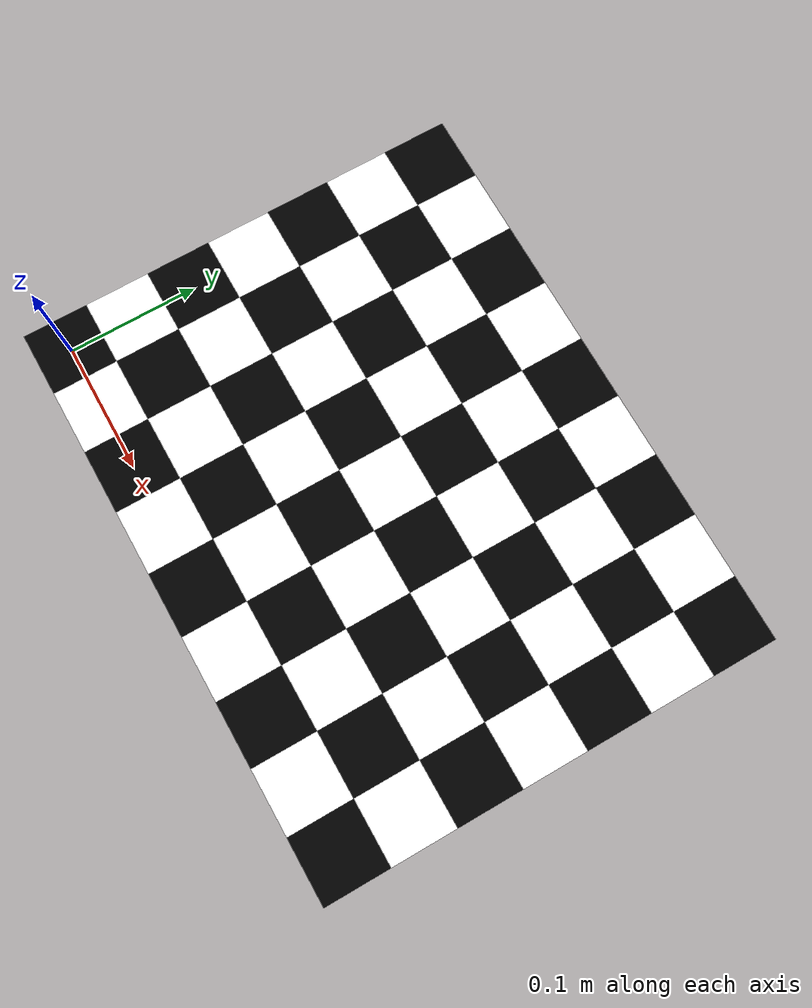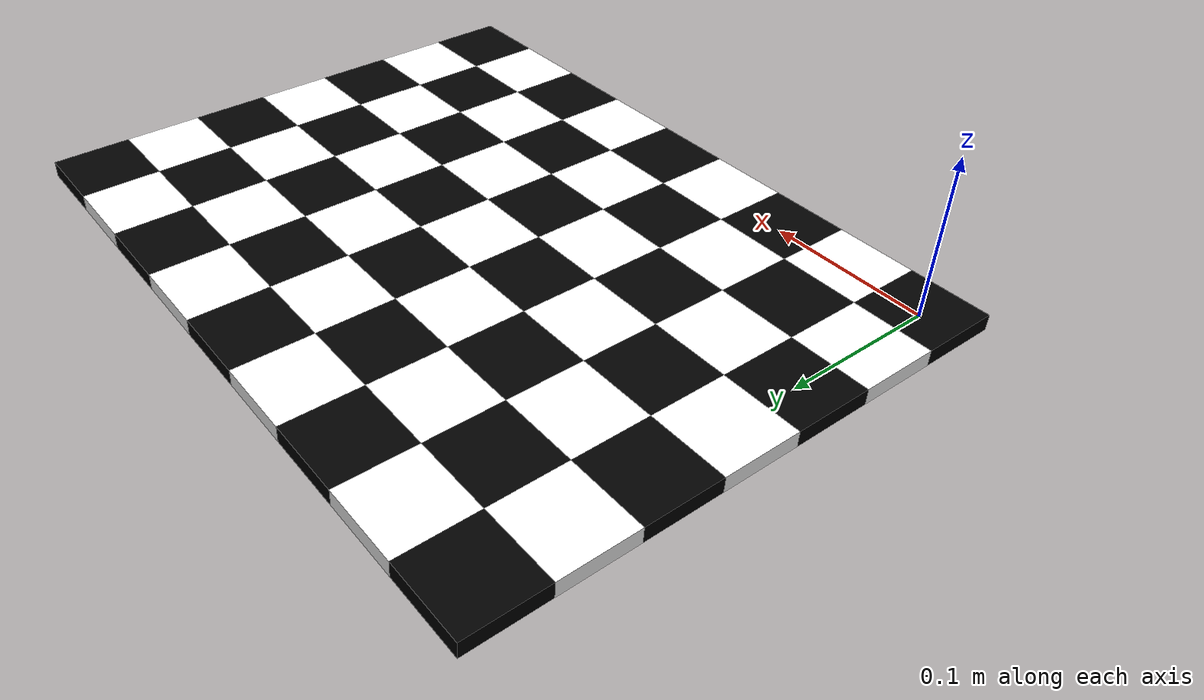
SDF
<?xml version="1.0" ?>
<sdf version="1.5">
  <model name="checkerboard">
    <static>true</static>
    <link name="square_01">
      <pose>0 0 0 0 0 0</pose>
      <visual name="visual">
	<geometry>
	  <box>
	    <size>0.05 0.05 0.01</size>
	  </box>
	</geometry>
	<material>
	  <diffuse>0 0 0 1</diffuse>
	  <specular>0 0 0 1</specular>
	  <ambient>0 0 0 1</ambient>
	</material>
      </visual>
    </link>
    <link name="square_02">
      <pose>0.05 0 0 0 0 0</pose>
      <visual name="visual">
	<geometry>
	  <box>
	    <size>0.05 0.05 0.01</size>
	  </box>
	</geometry>
	<material>
	  <diffuse>1 1 1  1</diffuse>
	  <specular>1 1 1 1</specular>
	  <ambient>1 1 1 1</ambient>
	</material>
      </visual>
    </link>
    <link name="square_03">
      <pose>0.1 0 0 0 0 0</pose>
      <visual name="visual">
	<geometry>
	  <box>
	    <size>0.05 0.05 0.01</size>
	  </box>
	</geometry>
	<material>
	  <diffuse>0 0 0 1</diffuse>
	  <specular>0 0 0 1</specular>
	  <ambient>0 0 0 1</ambient>
	</material>
      </visual>
    </link>
    <link name="square_00.4">
      <pose>0.15 0 0 0 0 0</pose>
      <visual name="visual">
	<geometry>
	  <box>
	    <size>0.05 0.05 0.01</size>
	  </box>
	</geometry>
	<material>
	  <diffuse>1 1 1  1</diffuse>
	  <specular>1 1 1 1</specular>
	  <ambient>1 1 1 1</ambient>
	</material>
      </visual>
    </link>
    <link name="square_05">
      <pose>0.2 0 0 0 0 0</pose>
      <visual name="visual">
	<geometry>
	  <box>
	    <size>0.05 0.05 0.01</size>
	  </box>
	</geometry>
	<material>
	  <diffuse>0 0 0 1</diffuse>
	  <specular>0 0 0 1</specular>
	  <ambient>0 0 0 1</ambient>
	</material>
      </visual>
    </link>
    <link name="square_06">
      <pose>0.25 0 0 0 0 0</pose>
      <visual name="visual">
	<geometry>
	  <box>
	    <size>0.05 0.05 0.01</size>
	  </box>
	</geometry>
	<material>
	  <diffuse>1 1 1  1</diffuse>
	  <specular>1 1 1 1</specular>
	  <ambient>1 1 1 1</ambient>
	</material>
      </visual>
    </link>
    <link name="square_07">
      <pose>0.3 0 0 0 0 0</pose>
      <visual name="visual">
	<geometry>
	  <box>
	    <size>0.05 0.05 0.01</size>
	  </box>
	</geometry>
	<material>
	  <diffuse>0 0 0 1</diffuse>
	  <specular>0 0 0 1</specular>
	  <ambient>0 0 0 1</ambient>
	</material>
      </visual>
    </link>
    <link name="square_08">
      <pose>0.35 0 0 0 0 0</pose>
      <visual name="visual">
	<geometry>
	  <box>
	    <size>0.05 0.05 0.01</size>
	  </box>
	</geometry>
	<material>
	  <diffuse>1 1 1  1</diffuse>
	  <specular>1 1 1 1</specular>
	  <ambient>1 1 1 1</ambient>
	</material>
      </visual>
    </link>
    <link name="square_09">
      <pose>0.4 0 0 0 0 0</pose>
      <visual name="visual">
	<geometry>
	  <box>
	    <size>0.05 0.05 0.01</size>
	  </box>
	</geometry>
	<material>
	  <diffuse>0 0 0 1</diffuse>
	  <specular>0 0 0 1</specular>
	  <ambient>0 0 0 1</ambient>
	</material>
      </visual>
    </link>
    <link name="square_0.051">
      <pose>0 0.05 0 0 0 0</pose>
      <visual name="visual">
	<geometry>
	  <box>
	    <size>0.05 0.05 0.01</size>
	  </box>
	</geometry>
	<material>
	  <diffuse>1 1 1  1</diffuse>
	  <specular>1 1 1 1</specular>
	  <ambient>1 1 1 1</ambient>
	</material>
      </visual>
    </link>
    <link name="square_0.052">
      <pose>0.05 0.05 0 0 0 0</pose>
      <visual name="visual">
	<geometry>
	  <box>
	    <size>0.05 0.05 0.01</size>
	  </box>
	</geometry>
	<material>
	  <diffuse>0 0 0 1</diffuse>
	  <specular>0 0 0 1</specular>
	  <ambient>0 0 0 1</ambient>
	</material>
      </visual>
    </link>
    <link name="square_0.053">
      <pose>0.1 0.05 0 0 0 0</pose>
      <visual name="visual">
	<geometry>
	  <box>
	    <size>0.05 0.05 0.01</size>
	  </box>
	</geometry>
	<material>
	  <diffuse>1 1 1  1</diffuse>
	  <specular>1 1 1 1</specular>
	  <ambient>1 1 1 1</ambient>
	</material>
      </visual>
    </link>
    <link name="square_0.050.4">
      <pose>0.15 0.05 0 0 0 0</pose>
      <visual name="visual">
	<geometry>
	  <box>
	    <size>0.05 0.05 0.01</size>
	  </box>
	</geometry>
	<material>
	  <diffuse>0 0 0 1</diffuse>
	  <specular>0 0 0 1</specular>
	  <ambient>0 0 0 1</ambient>
	</material>
      </visual>
    </link>
    <link name="square_0.055">
      <pose>0.2 0.05 0 0 0 0</pose>
      <visual name="visual">
	<geometry>
	  <box>
	    <size>0.05 0.05 0.01</size>
	  </box>
	</geometry>
	<material>
	  <diffuse>1 1 1  1</diffuse>
	  <specular>1 1 1 1</specular>
	  <ambient>1 1 1 1</ambient>
	</material>
      </visual>
    </link>
    <link name="square_0.056">
      <pose>0.25 0.05 0 0 0 0</pose>
      <visual name="visual">
	<geometry>
	  <box>
	    <size>0.05 0.05 0.01</size>
	  </box>
	</geometry>
	<material>
	  <diffuse>0 0 0 1</diffuse>
	  <specular>0 0 0 1</specular>
	  <ambient>0 0 0 1</ambient>
	</material>
      </visual>
    </link>
    <link name="square_0.057">
      <pose>0.3 0.05 0 0 0 0</pose>
      <visual name="visual">
	<geometry>
	  <box>
	    <size>0.05 0.05 0.01</size>
	  </box>
	</geometry>
	<material>
	  <diffuse>1 1 1  1</diffuse>
	  <specular>1 1 1 1</specular>
	  <ambient>1 1 1 1</ambient>
	</material>
      </visual>
    </link>
    <link name="square_0.058">
      <pose>0.35 0.05 0 0 0 0</pose>
      <visual name="visual">
	<geometry>
	  <box>
	    <size>0.05 0.05 0.01</size>
	  </box>
	</geometry>
	<material>
	  <diffuse>0 0 0 1</diffuse>
	  <specular>0 0 0 1</specular>
	  <ambient>0 0 0 1</ambient>
	</material>
      </visual>
    </link>
    <link name="square_0.059">
      <pose>0.4 0.05 0 0 0 0</pose>
      <visual name="visual">
	<geometry>
	  <box>
	    <size>0.05 0.05 0.01</size>
	  </box>
	</geometry>
	<material>
	  <diffuse>1 1 1  1</diffuse>
	  <specular>1 1 1 1</specular>
	  <ambient>1 1 1 1</ambient>
	</material>
      </visual>
    </link>
    <link name="square_0.101">
      <pose>0 0.10 0 0 0 0</pose>
      <visual name="visual">
	<geometry>
	  <box>
	    <size>0.05 0.05 0.01</size>
	  </box>
	</geometry>
	<material>
	  <diffuse>0 0 0 1</diffuse>
	  <specular>0 0 0 1</specular>
	  <ambient>0 0 0 1</ambient>
	</material>
      </visual>
    </link>
    <link name="square_0.102">
      <pose>0.05 0.10 0 0 0 0</pose>
      <visual name="visual">
	<geometry>
	  <box>
	    <size>0.05 0.05 0.01</size>
	  </box>
	</geometry>
	<material>
	  <diffuse>1 1 1  1</diffuse>
	  <specular>1 1 1 1</specular>
	  <ambient>1 1 1 1</ambient>
	</material>
      </visual>
    </link>
    <link name="square_0.103">
      <pose>0.1 0.10 0 0 0 0</pose>
      <visual name="visual">
	<geometry>
	  <box>
	    <size>0.05 0.05 0.01</size>
	  </box>
	</geometry>
	<material>
	  <diffuse>0 0 0 1</diffuse>
	  <specular>0 0 0 1</specular>
	  <ambient>0 0 0 1</ambient>
	</material>
      </visual>
    </link>
    <link name="square_0.100.4">
      <pose>0.15 0.10 0 0 0 0</pose>
      <visual name="visual">
	<geometry>
	  <box>
	    <size>0.05 0.05 0.01</size>
	  </box>
	</geometry>
	<material>
	  <diffuse>1 1 1  1</diffuse>
	  <specular>1 1 1 1</specular>
	  <ambient>1 1 1 1</ambient>
	</material>
      </visual>
    </link>
    <link name="square_0.105">
      <pose>0.2 0.10 0 0 0 0</pose>
      <visual name="visual">
	<geometry>
	  <box>
	    <size>0.05 0.05 0.01</size>
	  </box>
	</geometry>
	<material>
	  <diffuse>0 0 0 1</diffuse>
	  <specular>0 0 0 1</specular>
	  <ambient>0 0 0 1</ambient>
	</material>
      </visual>
    </link>
    <link name="square_0.106">
      <pose>0.25 0.10 0 0 0 0</pose>
      <visual name="visual">
	<geometry>
	  <box>
	    <size>0.05 0.05 0.01</size>
	  </box>
	</geometry>
	<material>
	  <diffuse>1 1 1  1</diffuse>
	  <specular>1 1 1 1</specular>
	  <ambient>1 1 1 1</ambient>
	</material>
      </visual>
    </link>
    <link name="square_0.107">
      <pose>0.3 0.10 0 0 0 0</pose>
      <visual name="visual">
	<geometry>
	  <box>
	    <size>0.05 0.05 0.01</size>
	  </box>
	</geometry>
	<material>
	  <diffuse>0 0 0 1</diffuse>
	  <specular>0 0 0 1</specular>
	  <ambient>0 0 0 1</ambient>
	</material>
      </visual>
    </link>
    <link name="square_0.108">
      <pose>0.35 0.10 0 0 0 0</pose>
      <visual name="visual">
	<geometry>
	  <box>
	    <size>0.05 0.05 0.01</size>
	  </box>
	</geometry>
	<material>
	  <diffuse>1 1 1  1</diffuse>
	  <specular>1 1 1 1</specular>
	  <ambient>1 1 1 1</ambient>
	</material>
      </visual>
    </link>
    <link name="square_0.109">
      <pose>0.4 0.10 0 0 0 0</pose>
      <visual name="visual">
	<geometry>
	  <box>
	    <size>0.05 0.05 0.01</size>
	  </box>
	</geometry>
	<material>
	  <diffuse>0 0 0 1</diffuse>
	  <specular>0 0 0 1</specular>
	  <ambient>0 0 0 1</ambient>
	</material>
      </visual>
    </link>
    <link name="square_0.151">
      <pose>0 0.15 0 0 0 0</pose>
      <visual name="visual">
	<geometry>
	  <box>
	    <size>0.05 0.05 0.01</size>
	  </box>
	</geometry>
	<material>
	  <diffuse>1 1 1  1</diffuse>
	  <specular>1 1 1 1</specular>
	  <ambient>1 1 1 1</ambient>
	</material>
      </visual>
    </link>
    <link name="square_0.152">
      <pose>0.05 0.15 0 0 0 0</pose>
      <visual name="visual">
	<geometry>
	  <box>
	    <size>0.05 0.05 0.01</size>
	  </box>
	</geometry>
	<material>
	  <diffuse>0 0 0 1</diffuse>
	  <specular>0 0 0 1</specular>
	  <ambient>0 0 0 1</ambient>
	</material>
      </visual>
    </link>
    <link name="square_0.153">
      <pose>0.1 0.15 0 0 0 0</pose>
      <visual name="visual">
	<geometry>
	  <box>
	    <size>0.05 0.05 0.01</size>
	  </box>
	</geometry>
	<material>
	  <diffuse>1 1 1  1</diffuse>
	  <specular>1 1 1 1</specular>
	  <ambient>1 1 1 1</ambient>
	</material>
      </visual>
    </link>
    <link name="square_0.150.4">
      <pose>0.15 0.15 0 0 0 0</pose>
      <visual name="visual">
	<geometry>
	  <box>
	    <size>0.05 0.05 0.01</size>
	  </box>
	</geometry>
	<material>
	  <diffuse>0 0 0 1</diffuse>
	  <specular>0 0 0 1</specular>
	  <ambient>0 0 0 1</ambient>
	</material>
      </visual>
    </link>
    <link name="square_0.155">
      <pose>0.2 0.15 0 0 0 0</pose>
      <visual name="visual">
	<geometry>
	  <box>
	    <size>0.05 0.05 0.01</size>
	  </box>
	</geometry>
	<material>
	  <diffuse>1 1 1  1</diffuse>
	  <specular>1 1 1 1</specular>
	  <ambient>1 1 1 1</ambient>
	</material>
      </visual>
    </link>
    <link name="square_0.156">
      <pose>0.25 0.15 0 0 0 0</pose>
      <visual name="visual">
	<geometry>
	  <box>
	    <size>0.05 0.05 0.01</size>
	  </box>
	</geometry>
	<material>
	  <diffuse>0 0 0 1</diffuse>
	  <specular>0 0 0 1</specular>
	  <ambient>0 0 0 1</ambient>
	</material>
      </visual>
    </link>
    <link name="square_0.157">
      <pose>0.3 0.15 0 0 0 0</pose>
      <visual name="visual">
	<geometry>
	  <box>
	    <size>0.05 0.05 0.01</size>
	  </box>
	</geometry>
	<material>
	  <diffuse>1 1 1  1</diffuse>
	  <specular>1 1 1 1</specular>
	  <ambient>1 1 1 1</ambient>
	</material>
      </visual>
    </link>
    <link name="square_0.158">
      <pose>0.35 0.15 0 0 0 0</pose>
      <visual name="visual">
	<geometry>
	  <box>
	    <size>0.05 0.05 0.01</size>
	  </box>
	</geometry>
	<material>
	  <diffuse>0 0 0 1</diffuse>
	  <specular>0 0 0 1</specular>
	  <ambient>0 0 0 1</ambient>
	</material>
      </visual>
    </link>
    <link name="square_0.159">
      <pose>0.4 0.15 0 0 0 0</pose>
      <visual name="visual">
	<geometry>
	  <box>
	    <size>0.05 0.05 0.01</size>
	  </box>
	</geometry>
	<material>
	  <diffuse>1 1 1  1</diffuse>
	  <specular>1 1 1 1</specular>
	  <ambient>1 1 1 1</ambient>
	</material>
      </visual>
    </link>
    <link name="square_0.21">
      <pose>0 0.2 0 0 0 0</pose>
      <visual name="visual">
	<geometry>
	  <box>
	    <size>0.05 0.05 0.01</size>
	  </box>
	</geometry>
	<material>
	  <diffuse>0 0 0 1</diffuse>
	  <specular>0 0 0 1</specular>
	  <ambient>0 0 0 1</ambient>
	</material>
      </visual>
    </link>
    <link name="square_0.22">
      <pose>0.05 0.2 0 0 0 0</pose>
      <visual name="visual">
	<geometry>
	  <box>
	    <size>0.05 0.05 0.01</size>
	  </box>
	</geometry>
	<material>
	  <diffuse>1 1 1  1</diffuse>
	  <specular>1 1 1 1</specular>
	  <ambient>1 1 1 1</ambient>
	</material>
      </visual>
    </link>
    <link name="square_0.23">
      <pose>0.1 0.2 0 0 0 0</pose>
      <visual name="visual">
	<geometry>
	  <box>
	    <size>0.05 0.05 0.01</size>
	  </box>
	</geometry>
	<material>
	  <diffuse>0 0 0 1</diffuse>
	  <specular>0 0 0 1</specular>
	  <ambient>0 0 0 1</ambient>
	</material>
      </visual>
    </link>
    <link name="square_0.20.4">
      <pose>0.15 0.2 0 0 0 0</pose>
      <visual name="visual">
	<geometry>
	  <box>
	    <size>0.05 0.05 0.01</size>
	  </box>
	</geometry>
	<material>
	  <diffuse>1 1 1  1</diffuse>
	  <specular>1 1 1 1</specular>
	  <ambient>1 1 1 1</ambient>
	</material>
      </visual>
    </link>
    <link name="square_0.25">
      <pose>0.2 0.2 0 0 0 0</pose>
      <visual name="visual">
	<geometry>
	  <box>
	    <size>0.05 0.05 0.01</size>
	  </box>
	</geometry>
	<material>
	  <diffuse>0 0 0 1</diffuse>
	  <specular>0 0 0 1</specular>
	  <ambient>0 0 0 1</ambient>
	</material>
      </visual>
    </link>
    <link name="square_0.26">
      <pose>0.25 0.2 0 0 0 0</pose>
      <visual name="visual">
	<geometry>
	  <box>
	    <size>0.05 0.05 0.01</size>
	  </box>
	</geometry>
	<material>
	  <diffuse>1 1 1  1</diffuse>
	  <specular>1 1 1 1</specular>
	  <ambient>1 1 1 1</ambient>
	</material>
      </visual>
    </link>
    <link name="square_0.27">
      <pose>0.3 0.2 0 0 0 0</pose>
      <visual name="visual">
	<geometry>
	  <box>
	    <size>0.05 0.05 0.01</size>
	  </box>
	</geometry>
	<material>
	  <diffuse>0 0 0 1</diffuse>
	  <specular>0 0 0 1</specular>
	  <ambient>0 0 0 1</ambient>
	</material>
      </visual>
    </link>
    <link name="square_0.28">
      <pose>0.35 0.2 0 0 0 0</pose>
      <visual name="visual">
	<geometry>
	  <box>
	    <size>0.05 0.05 0.01</size>
	  </box>
	</geometry>
	<material>
	  <diffuse>1 1 1  1</diffuse>
	  <specular>1 1 1 1</specular>
	  <ambient>1 1 1 1</ambient>
	</material>
      </visual>
    </link>
    <link name="square_0.29">
      <pose>0.4 0.2 0 0 0 0</pose>
      <visual name="visual">
	<geometry>
	  <box>
	    <size>0.05 0.05 0.01</size>
	  </box>
	</geometry>
	<material>
	  <diffuse>0 0 0 1</diffuse>
	  <specular>0 0 0 1</specular>
	  <ambient>0 0 0 1</ambient>
	</material>
      </visual>
    </link>
    <link name="square_0.251">
      <pose>0 0.25 0 0 0 0</pose>
      <visual name="visual">
	<geometry>
	  <box>
	    <size>0.05 0.05 0.01</size>
	  </box>
	</geometry>
	<material>
	  <diffuse>1 1 1  1</diffuse>
	  <specular>1 1 1 1</specular>
	  <ambient>1 1 1 1</ambient>
	</material>
      </visual>
    </link>
    <link name="square_0.252">
      <pose>0.05 0.25 0 0 0 0</pose>
      <visual name="visual">
	<geometry>
	  <box>
	    <size>0.05 0.05 0.01</size>
	  </box>
	</geometry>
	<material>
	  <diffuse>0 0 0 1</diffuse>
	  <specular>0 0 0 1</specular>
	  <ambient>0 0 0 1</ambient>
	</material>
      </visual>
    </link>
    <link name="square_0.253">
      <pose>0.1 0.25 0 0 0 0</pose>
      <visual name="visual">
	<geometry>
	  <box>
	    <size>0.05 0.05 0.01</size>
	  </box>
	</geometry>
	<material>
	  <diffuse>1 1 1  1</diffuse>
	  <specular>1 1 1 1</specular>
	  <ambient>1 1 1 1</ambient>
	</material>
      </visual>
    </link>
    <link name="square_0.250.4">
      <pose>0.15 0.25 0 0 0 0</pose>
      <visual name="visual">
	<geometry>
	  <box>
	    <size>0.05 0.05 0.01</size>
	  </box>
	</geometry>
	<material>
	  <diffuse>0 0 0 1</diffuse>
	  <specular>0 0 0 1</specular>
	  <ambient>0 0 0 1</ambient>
	</material>
      </visual>
    </link>
    <link name="square_0.255">
      <pose>0.2 0.25 0 0 0 0</pose>
      <visual name="visual">
	<geometry>
	  <box>
	    <size>0.05 0.05 0.01</size>
	  </box>
	</geometry>
	<material>
	  <diffuse>1 1 1  1</diffuse>
	  <specular>1 1 1 1</specular>
	  <ambient>1 1 1 1</ambient>
	</material>
      </visual>
    </link>
    <link name="square_0.256">
      <pose>0.25 0.25 0 0 0 0</pose>
      <visual name="visual">
	<geometry>
	  <box>
	    <size>0.05 0.05 0.01</size>
	  </box>
	</geometry>
	<material>
	  <diffuse>0 0 0 1</diffuse>
	  <specular>0 0 0 1</specular>
	  <ambient>0 0 0 1</ambient>
	</material>
      </visual>
    </link>
    <link name="square_0.257">
      <pose>0.3 0.25 0 0 0 0</pose>
      <visual name="visual">
	<geometry>
	  <box>
	    <size>0.05 0.05 0.01</size>
	  </box>
	</geometry>
	<material>
	  <diffuse>1 1 1  1</diffuse>
	  <specular>1 1 1 1</specular>
	  <ambient>1 1 1 1</ambient>
	</material>
      </visual>
    </link>
    <link name="square_0.258">
      <pose>0.35 0.25 0 0 0 0</pose>
      <visual name="visual">
	<geometry>
	  <box>
	    <size>0.05 0.05 0.01</size>
	  </box>
	</geometry>
	<material>
	  <diffuse>0 0 0 1</diffuse>
	  <specular>0 0 0 1</specular>
	  <ambient>0 0 0 1</ambient>
	</material>
      </visual>
    </link>
    <link name="square_0.259">
      <pose>0.4 0.25 0 0 0 0</pose>
      <visual name="visual">
	<geometry>
	  <box>
	    <size>0.05 0.05 0.01</size>
	  </box>
	</geometry>
	<material>
	  <diffuse>1 1 1  1</diffuse>
	  <specular>1 1 1 1</specular>
	  <ambient>1 1 1 1</ambient>
	</material>
      </visual>
    </link>
    <link name="square_0.31">
      <pose>0 0.3 0 0 0 0</pose>
      <visual name="visual">
	<geometry>
	  <box>
	    <size>0.05 0.05 0.01</size>
	  </box>
	</geometry>
	<material>
	  <diffuse>0 0 0 1</diffuse>
	  <specular>0 0 0 1</specular>
	  <ambient>0 0 0 1</ambient>
	</material>
      </visual>
    </link>
    <link name="square_0.32">
      <pose>0.05 0.3 0 0 0 0</pose>
      <visual name="visual">
	<geometry>
	  <box>
	    <size>0.05 0.05 0.01</size>
	  </box>
	</geometry>
	<material>
	  <diffuse>1 1 1  1</diffuse>
	  <specular>1 1 1 1</specular>
	  <ambient>1 1 1 1</ambient>
	</material>
      </visual>
    </link>
    <link name="square_0.33">
      <pose>0.1 0.3 0 0 0 0</pose>
      <visual name="visual">
	<geometry>
	  <box>
	    <size>0.05 0.05 0.01</size>
	  </box>
	</geometry>
	<material>
	  <diffuse>0 0 0 1</diffuse>
	  <specular>0 0 0 1</specular>
	  <ambient>0 0 0 1</ambient>
	</material>
      </visual>
    </link>
    <link name="square_0.34">
      <pose>0.15 0.3 0 0 0 0</pose>
      <visual name="visual">
	<geometry>
	  <box>
	    <size>0.05 0.05 0.01</size>
	  </box>
	</geometry>
	<material>
	  <diffuse>1 1 1  1</diffuse>
	  <specular>1 1 1 1</specular>
	  <ambient>1 1 1 1</ambient>
	</material>
      </visual>
    </link>
    <link name="square_0.35">
      <pose>0.2 0.3 0 0 0 0</pose>
      <visual name="visual">
	<geometry>
	  <box>
	    <size>0.05 0.05 0.01</size>
	  </box>
	</geometry>
	<material>
	  <diffuse>0 0 0 1</diffuse>
	  <specular>0 0 0 1</specular>
	  <ambient>0 0 0 1</ambient>
	</material>
      </visual>
    </link>
    <link name="square_0.36">
      <pose>0.25 0.3 0 0 0 0</pose>
      <visual name="visual">
	<geometry>
	  <box>
	    <size>0.05 0.05 0.01</size>
	  </box>
	</geometry>
	<material>
	  <diffuse>1 1 1  1</diffuse>
	  <specular>1 1 1 1</specular>
	  <ambient>1 1 1 1</ambient>
	</material>
      </visual>
    </link>
    <link name="square_0.37">
      <pose>0.3 0.3 0 0 0 0</pose>
      <visual name="visual">
	<geometry>
	  <box>
	    <size>0.05 0.05 0.01</size>
	  </box>
	</geometry>
	<material>
	  <diffuse>0 0 0 1</diffuse>
	  <specular>0 0 0 1</specular>
	  <ambient>0 0 0 1</ambient>
	</material>
      </visual>
    </link>
    <link name="square_0.38">
      <pose>0.35 0.3 0 0 0 0</pose>
      <visual name="visual">
	<geometry>
	  <box>
	    <size>0.05 0.05 0.01</size>
	  </box>
	</geometry>
	<material>
	  <diffuse>1 1 1  1</diffuse>
	  <specular>1 1 1 1</specular>
	  <ambient>1 1 1 1</ambient>
	</material>
      </visual>
    </link>
    <link name="square_0.39">
      <pose>0.4 0.3 0 0 0 0</pose>
      <visual name="visual">
	<geometry>
	  <box>
	    <size>0.05 0.05 0.01</size>
	  </box>
	</geometry>
	<material>
	  <diffuse>0 0 0 1</diffuse>
	  <specular>0 0 0 1</specular>
	  <ambient>0 0 0 1</ambient>
	</material>
      </visual>
    </link>
  </model>
</sdf>
